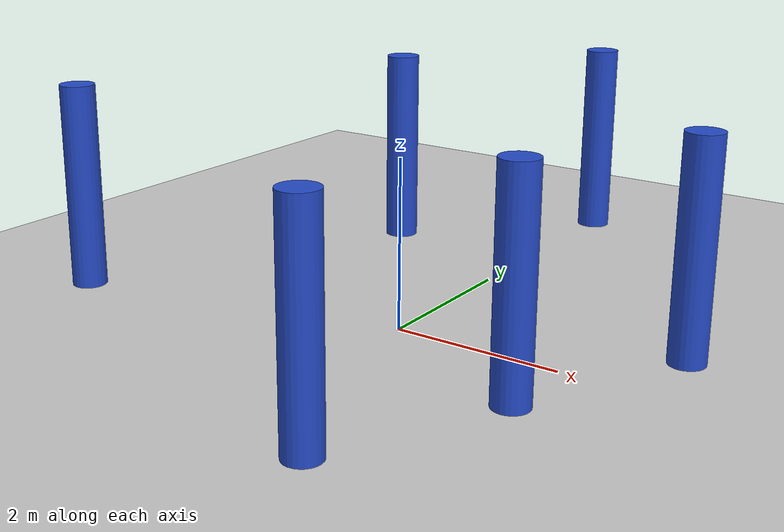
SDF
<sdf version="1.6">
 <world name="default">
  <light name="sun" type="directional">
   <pose>0 0 10 0 -0 0</pose>
   <diffuse>0.8 0.8 0.8 1</diffuse>
   <specular>0.2 0.2 0.2 1</specular>
   <attenuation>
    <range>1000</range>
    <constant>0.9</constant>
    <linear>0.01</linear>
    <quadratic>0.001</quadratic>
   </attenuation>
   <direction>-0.5 0.1 -0.9</direction>
  </light>
  <model name="ground_plane">
   <static>1</static>
   <link name="link">
    <collision name="collision">
     <geometry><plane><normal>0 0 1</normal><size>100 100</size></plane></geometry>
     <surface>
      <contact><collide_bitmask>65535</collide_bitmask></contact>
      <friction><ode><mu>100</mu><mu2>50</mu2></ode></friction>
     </surface>
    </collision>
    <visual name="visual">
     <cast_shadows>0</cast_shadows>
     <geometry><plane><normal>0 0 1</normal><size>100 100</size></plane></geometry>
     <material>
      <script><uri>file://media/materials/scripts/gazebo.material</uri><name>Gazebo/Grey</name></script>
     </material>
    </visual>
   </link>
  </model>
  <gravity>0 0 -9.8</gravity>
  <magnetic_field>6e-06 2.3e-05 -4.2e-05</magnetic_field>
  <atmosphere type="adiabatic"/>
  <physics name="default_physics" default="0" type="ode">
   <max_step_size>0.001</max_step_size>
   <real_time_factor>1</real_time_factor>
   <real_time_update_rate>1000</real_time_update_rate>
  </physics>
  <scene><ambient>0.4 0.4 0.4 1</ambient><background>0.7 0.7 0.7 1</background><shadows>1</shadows></scene>
  <audio><device>default</device></audio>
  <spherical_coordinates>
   <surface_model>EARTH_WGS84</surface_model>
   <latitude_deg>0</latitude_deg>
   <longitude_deg>0</longitude_deg>
   <elevation>0</elevation>
   <heading_deg>0</heading_deg>
  </spherical_coordinates>
  <model name="unit_cylinder">
   <pose>-3.99999 -0.999972 1.26075 0 0 -0.001429</pose>
   <link name="link">
    <inertial>
     <mass>1</mass>
     <inertia><ixx>0.145833</ixx><ixy>0</ixy><ixz>0</ixz><iyy>0.145833</iyy><iyz>0</iyz><izz>0.125</izz></inertia>
    </inertial>
    <collision name="collision">
     <geometry><cylinder><radius>0.212872</radius><length>2.52151</length></cylinder></geometry>
    </collision>
    <visual name="visual">
     <geometry><cylinder><radius>0.212872</radius><length>2.52151</length></cylinder></geometry>
     <material>
      <script><name>Gazebo/Blue</name><uri>file://media/materials/scripts/gazebo.material</uri></script>
     </material>
    </visual>
   </link>
  </model>
  <model name="unit_cylinder_clone">
   <pose>1.00008 -2.99993 1.26075 0 0 -0.002243</pose>
   <link name="link">
    <inertial>
     <mass>1</mass>
     <inertia><ixx>0.145833</ixx><ixy>0</ixy><ixz>0</ixz><iyy>0.145833</iyy><iyz>0</iyz><izz>0.125</izz></inertia>
    </inertial>
    <collision name="collision">
     <geometry><cylinder><radius>0.212872</radius><length>2.52151</length></cylinder></geometry>
    </collision>
    <visual name="visual">
     <geometry><cylinder><radius>0.212872</radius><length>2.52151</length></cylinder></geometry>
     <material>
      <script><name>Gazebo/Blue</name><uri>file://media/materials/scripts/gazebo.material</uri></script>
     </material>
    </visual>
   </link>
  </model>
  <model name="unit_cylinder_clone_0">
   <pose>5.2e-05 5.00003 1.26075 0 -0 -0.001553</pose>
   <link name="link">
    <inertial>
     <mass>1</mass>
     <inertia><ixx>0.145833</ixx><ixy>0</ixy><ixz>0</ixz><iyy>0.145833</iyy><iyz>0</iyz><izz>0.125</izz></inertia>
    </inertial>
    <collision name="collision">
     <geometry><cylinder><radius>0.212872</radius><length>2.52151</length></cylinder></geometry>
    </collision>
    <visual name="visual">
     <geometry><cylinder><radius>0.212872</radius><length>2.52151</length></cylinder></geometry>
     <material>
      <script><name>Gazebo/Blue</name><uri>file://media/materials/scripts/gazebo.material</uri></script>
     </material>
    </visual>
   </link>
  </model>
  <model name="unit_cylinder_clone_1">
   <pose>-1.99997 3.00003 1.26075 -0 -0 -0.001586</pose>
   <link name="link">
    <inertial>
     <mass>1</mass>
     <inertia><ixx>0.145833</ixx><ixy>0</ixy><ixz>0</ixz><iyy>0.145833</iyy><iyz>0</iyz><izz>0.125</izz></inertia>
    </inertial>
    <collision name="collision">
     <geometry><cylinder><radius>0.212872</radius><length>2.52151</length></cylinder></geometry>
    </collision>
    <visual name="visual">
     <geometry><cylinder><radius>0.212872</radius><length>2.52151</length></cylinder></geometry>
     <material>
      <script><name>Gazebo/Blue</name><uri>file://media/materials/scripts/gazebo.material</uri></script>
     </material>
    </visual>
   </link>
  </model>
  <model name="unit_cylinder_clone_0_clone">
   <pose>3.00006 1.00004 1.26075 0 -0 -0.001478</pose>
   <link name="link">
    <inertial>
     <mass>1</mass>
     <inertia><ixx>0.145833</ixx><ixy>0</ixy><ixz>0</ixz><iyy>0.145833</iyy><iyz>0</iyz><izz>0.125</izz></inertia>
    </inertial>
    <collision name="collision">
     <geometry><cylinder><radius>0.212872</radius><length>2.52151</length></cylinder></geometry>
    </collision>
    <visual name="visual">
     <geometry><cylinder><radius>0.212872</radius><length>2.52151</length></cylinder></geometry>
     <material>
      <script><name>Gazebo/Blue</name><uri>file://media/materials/scripts/gazebo.material</uri></script>
     </material>
    </visual>
   </link>
  </model>
  <model name="unit_cylinder_clone_clone">
   <pose>2.00005 -0.999943 1.26075 0 0 -0.002963</pose>
   <link name="link">
    <inertial>
     <mass>1</mass>
     <inertia><ixx>0.145833</ixx><ixy>0</ixy><ixz>0</ixz><iyy>0.145833</iyy><iyz>0</iyz><izz>0.125</izz></inertia>
    </inertial>
    <collision name="collision">
     <geometry><cylinder><radius>0.212872</radius><length>2.52151</length></cylinder></geometry>
    </collision>
    <visual name="visual">
     <geometry><cylinder><radius>0.212872</radius><length>2.52151</length></cylinder></geometry>
     <material>
      <script><name>Gazebo/Blue</name><uri>file://media/materials/scripts/gazebo.material</uri></script>
     </material>
    </visual>
   </link>
  </model>
 </world>
</sdf>
